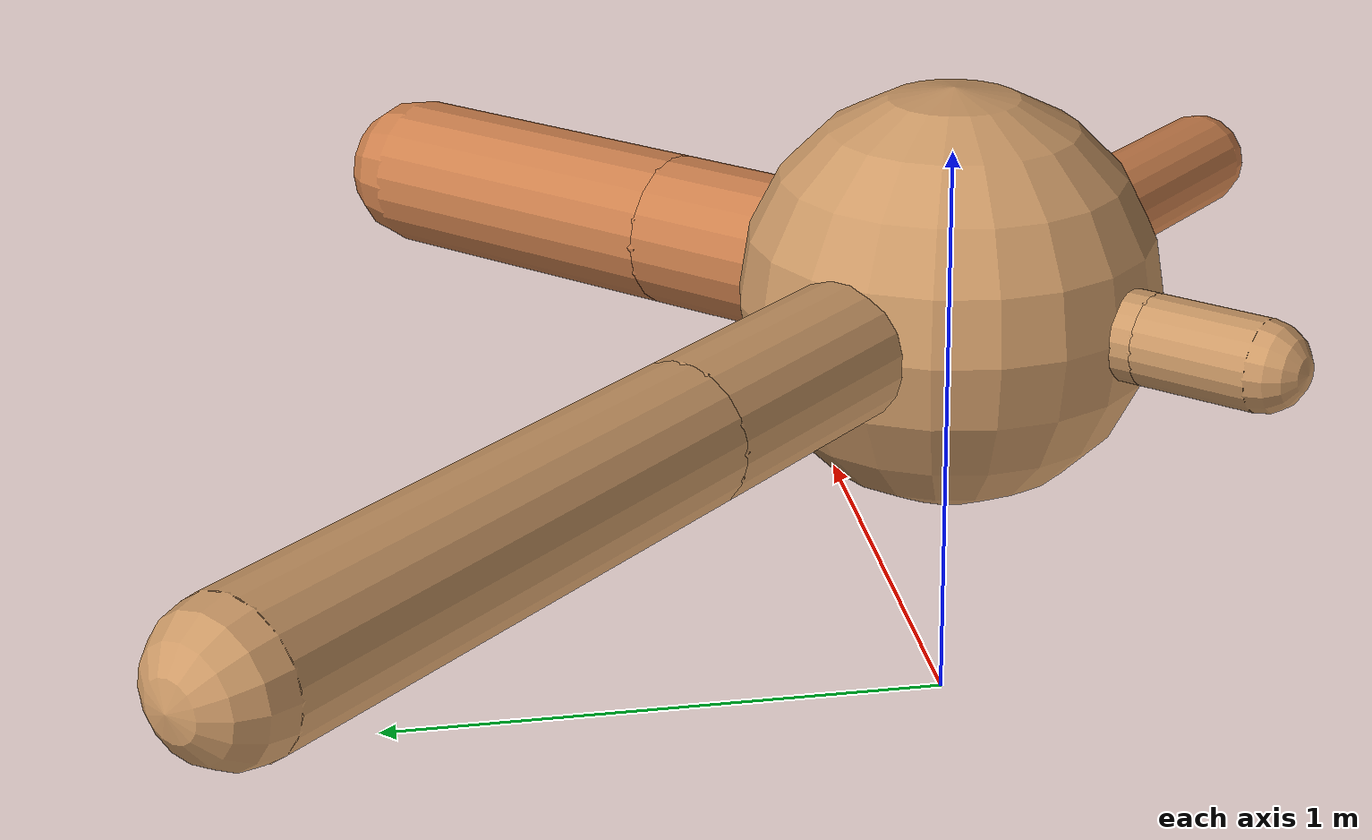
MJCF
<?xml version="1.0" ?>
<mujoco model="ant">

	<compiler angle="degree" coordinate="local" inertiafromgeom="true"/>

	<option integrator="RK4" timestep="0.01"/>

	<custom>

		<numeric data="0.0 0.0 0.55 1.0 0.0 0.0 0.0 0.0 1.0 0.0 -1.0 0.0 -1.0 0.0 1.0" name="init_qpos"/>

	</custom>

	<default>

		<joint armature="1" damping="1" limited="true"/>

		<geom conaffinity="0" condim="3" density="5.0" friction="1.5 0.1 0.1" margin="0.01" rgba="0.8 0.6 0.4 1"/>

	</default>

	<worldbody>

		<body name="torso" pos="0 0 0.75">

			<geom name="torso_geom" pos="0 0 0" size="0.361249361484063" type="sphere"/>

			<!--joint armature="0" damping="0" limited="false" margin="0.01" name="root" pos="0 0 0" type="free"/-->

			<body name="front_left_leg" pos="0 0 0">

				<geom fromto="0 0 0 0.2 0.2 0" name="aux_1_geom" size="0.13418972025865866" type="capsule" rgba=".8 .5 .3 1"/>

				<body name="aux_1" pos="0.2 0.2 0">

					<joint axis="0 0 1" name="hip_1" pos="0.0 0.0 0.0" range="-40 40" type="hinge"/>

					<geom fromto="0 0 0 0.2112408706402835 0.2112408706402835 0" name="left_leg_geom" size="0.13418972025865866" type="capsule" rgba=".8 .5 .3 1"/>

					<body pos="0.2112408706402835 0.2112408706402835 0" name="front_left_foot">

						<joint axis="-1 1 0" name="ankle_1" pos="0.0 0.0 0.0" range="30 100" type="hinge"/>

						<geom fromto="0 0 0 0.422481741280567 0.422481741280567 0" name="left_ankle_geom" size="0.13418972025865866" type="capsule" rgba=".8 .5 .3 1"/>

					</body>

				</body>

			</body>

			<body name="front_right_leg" pos="0 0 0">

				<geom fromto="0 0 0 -0.2 0.2 0" name="aux_2_geom" size="0.11911417170488225" type="capsule"/>

				<body name="aux_2" pos="-0.2 0.2 0">

					<joint axis="0 0 1" name="hip_2" pos="0.0 0.0 0.0" range="-40 40" type="hinge"/>

					<geom fromto="0 0 0 -0.3357218644790916 0.3357218644790916 0" name="right_leg_geom" size="0.11911417170488225" type="capsule"/>

					<body pos="-0.3357218644790916 0.3357218644790916 0" name="front_right_foot">

						<joint axis="1 1 0" name="ankle_2" pos="0.0 0.0 0.0" range="-100 -30" type="hinge"/>

						<geom fromto="0 0 0 -0.6714437289581832 0.6714437289581832 0" name="right_ankle_geom" size="0.11911417170488225" type="capsule"/>

					</body>

				</body>

			</body>

			<body name="left_back_leg" pos="0 0 0">

				<geom fromto="0 0 0 -0.2 -0.2 0" name="aux_3_geom" size="0.07742663559004628" type="capsule"/>

				<body name="aux_3" pos="-0.2 -0.2 0">

					<joint axis="0 0 1" name="hip_3" pos="0.0 0.0 0.0" range="-40 40" type="hinge"/>

					<geom fromto="0 0 0 -0.07208336743462354 -0.07208336743462354 0" name="back_leg_geom" size="0.07742663559004628" type="capsule"/>

					<body pos="-0.07208336743462354 -0.07208336743462354 0" name="left_back_foot">

						<joint axis="-1 1 0" name="ankle_3" pos="0.0 0.0 0.0" range="-100 -30" type="hinge"/>

						<geom fromto="0 0 0 -0.14416673486924708 -0.14416673486924708 0" name="third_ankle_geom" size="0.07742663559004628" type="capsule"/>

					</body>

				</body>

			</body>

			<body name="right_back_leg" pos="0 0 0">

				<geom fromto="0 0 0 0.2 -0.2 0" name="aux_4_geom" size="0.08701410174532874" type="capsule" rgba=".8 .5 .3 1"/>

				<body name="aux_4" pos="0.2 -0.2 0">

					<joint axis="0 0 1" name="hip_4" pos="0.0 0.0 0.0" range="-40 40" type="hinge"/>

					<geom fromto="0 0 0 0.14541070895712965 -0.14541070895712965 0" name="rightback_leg_geom" size="0.08701410174532874" type="capsule" rgba=".8 .5 .3 1"/>

					<body pos="0.14541070895712965 -0.14541070895712965 0" name="right_back_foot">

						<joint axis="1 1 0" name="ankle_4" pos="0.0 0.0 0.0" range="30 100" type="hinge"/>

						<geom fromto="0 0 0 0.2908214179142593 -0.2908214179142593 0" name="fourth_ankle_geom" size="0.08701410174532874" type="capsule" rgba=".8 .5 .3 1"/>

					</body>

				</body>

			</body>

		</body>

	</worldbody>

	<actuator>

		<motor ctrllimited="true" ctrlrange="-1.0 1.0" joint="hip_4" gear="150"/>

		<motor ctrllimited="true" ctrlrange="-1.0 1.0" joint="ankle_4" gear="150"/>

		<motor ctrllimited="true" ctrlrange="-1.0 1.0" joint="hip_1" gear="150"/>

		<motor ctrllimited="true" ctrlrange="-1.0 1.0" joint="ankle_1" gear="150"/>

		<motor ctrllimited="true" ctrlrange="-1.0 1.0" joint="hip_2" gear="150"/>

		<motor ctrllimited="true" ctrlrange="-1.0 1.0" joint="ankle_2" gear="150"/>

		<motor ctrllimited="true" ctrlrange="-1.0 1.0" joint="hip_3" gear="150"/>

		<motor ctrllimited="true" ctrlrange="-1.0 1.0" joint="ankle_3" gear="150"/>

	</actuator>

</mujoco>
